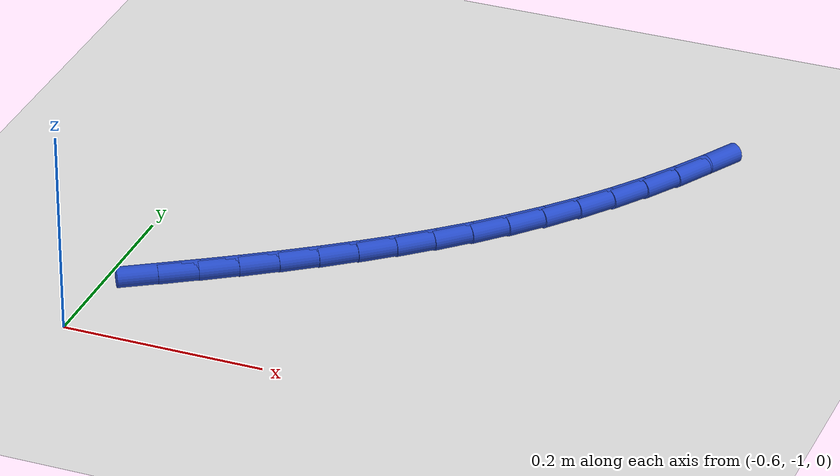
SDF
<sdf version="1.6">
 <world name="default">
  <model name="ground_plane">
   <static>1</static>
   <link name="link">
    <collision name="collision">
     <geometry><plane><normal>0 0 1</normal><size>100 100</size></plane></geometry>
     <surface><friction><ode><mu>100</mu><mu2>50</mu2></ode></friction></surface>
    </collision>
    <visual name="visual">
     <cast_shadows>0</cast_shadows>
     <geometry><plane><normal>0 0 1</normal><size>100 100</size></plane></geometry>
     <material>
      <script><uri>file://media/materials/scripts/gazebo.material</uri><name>Gazebo/WhiteGlow</name></script>
     </material>
    </visual>
   </link>
  </model>
  <model name="line">
   <link name="link_151">
    <pose>-0.5509827707120815 -0.8947250086799037 0.01 0 1.57 0.5580184928947185</pose>
    <collision name="collision">
     <geometry><cylinder><radius>0.01</radius><length>0.08</length></cylinder></geometry>
    </collision>
    <visual name="visual">
     <material>
      <script><name>Gazebo/Blue</name><uri>file://media/materials/scripts/gazebo.material</uri></script>
     </material>
     <geometry><cylinder><radius>0.01</radius><length>0.08</length></cylinder></geometry>
    </visual>
   </link>
   <link name="link_152">
    <pose>-0.5182204681369522 -0.874275022286219 0.01 0 1.57 0.5719299270831723</pose>
    <collision name="collision">
     <geometry><cylinder><radius>0.01</radius><length>0.08</length></cylinder></geometry>
    </collision>
    <visual name="visual">
     <material>
      <script><name>Gazebo/Blue</name><uri>file://media/materials/scripts/gazebo.material</uri></script>
     </material>
     <geometry><cylinder><radius>0.01</radius><length>0.08</length></cylinder></geometry>
    </visual>
   </link>
   <link name="link_153">
    <pose>-0.48587182010672536 -0.853452367473126 0.01 0 1.57 0.589069613883289</pose>
    <collision name="collision">
     <geometry><cylinder><radius>0.01</radius><length>0.08</length></cylinder></geometry>
    </collision>
    <visual name="visual">
     <material>
      <script><name>Gazebo/Blue</name><uri>file://media/materials/scripts/gazebo.material</uri></script>
     </material>
     <geometry><cylinder><radius>0.01</radius><length>0.08</length></cylinder></geometry>
    </visual>
   </link>
   <link name="link_154">
    <pose>-0.4540194923977188 -0.832168355378335 0.01 0 1.57 0.6094956309063845</pose>
    <collision name="collision">
     <geometry><cylinder><radius>0.01</radius><length>0.08</length></cylinder></geometry>
    </collision>
    <visual name="visual">
     <material>
      <script><name>Gazebo/Blue</name><uri>file://media/materials/scripts/gazebo.material</uri></script>
     </material>
     <geometry><cylinder><radius>0.01</radius><length>0.08</length></cylinder></geometry>
    </visual>
   </link>
   <link name="link_155">
    <pose>-0.42274615078625305 -0.8103342971395577 0.01 0 1.57 0.633263166594951</pose>
    <collision name="collision">
     <geometry><cylinder><radius>0.01</radius><length>0.08</length></cylinder></geometry>
    </collision>
    <visual name="visual">
     <material>
      <script><name>Gazebo/Blue</name><uri>file://media/materials/scripts/gazebo.material</uri></script>
     </material>
     <geometry><cylinder><radius>0.01</radius><length>0.08</length></cylinder></geometry>
    </visual>
   </link>
   <link name="link_156">
    <pose>-0.3921344610486457 -0.7878615038945045 0.01 0 1.57 0.6604178311100287</pose>
    <collision name="collision">
     <geometry><cylinder><radius>0.01</radius><length>0.08</length></cylinder></geometry>
    </collision>
    <visual name="visual">
     <material>
      <script><name>Gazebo/Blue</name><uri>file://media/materials/scripts/gazebo.material</uri></script>
     </material>
     <geometry><cylinder><radius>0.01</radius><length>0.08</length></cylinder></geometry>
    </visual>
   </link>
   <link name="link_157">
    <pose>-0.36226708896121573 -0.7646612867808859 0.01 0 1.57 0.6909874467323537</pose>
    <collision name="collision">
     <geometry><cylinder><radius>0.01</radius><length>0.08</length></cylinder></geometry>
    </collision>
    <visual name="visual">
     <material>
      <script><name>Gazebo/Blue</name><uri>file://media/materials/scripts/gazebo.material</uri></script>
     </material>
     <geometry><cylinder><radius>0.01</radius><length>0.08</length></cylinder></geometry>
    </visual>
   </link>
   <link name="link_158">
    <pose>-0.3332267003002819 -0.7406449569364129 0.01 0 1.57 0.7249723833430023</pose>
    <collision name="collision">
     <geometry><cylinder><radius>0.01</radius><length>0.08</length></cylinder></geometry>
    </collision>
    <visual name="visual">
     <material>
      <script><name>Gazebo/Blue</name><uri>file://media/materials/scripts/gazebo.material</uri></script>
     </material>
     <geometry><cylinder><radius>0.01</radius><length>0.08</length></cylinder></geometry>
    </visual>
   </link>
   <link name="link_159">
    <pose>-0.3050959608421623 -0.7157238254987958 0.01 0 1.57 0.7623347264660955</pose>
    <collision name="collision">
     <geometry><cylinder><radius>0.01</radius><length>0.08</length></cylinder></geometry>
    </collision>
    <visual name="visual">
     <material>
      <script><name>Gazebo/Blue</name><uri>file://media/materials/scripts/gazebo.material</uri></script>
     </material>
     <geometry><cylinder><radius>0.01</radius><length>0.08</length></cylinder></geometry>
    </visual>
   </link>
   <link name="link_160">
    <pose>-0.2779575363631768 -0.6898092036057463 0.01 0 1.57 0.8029868729434363</pose>
    <collision name="collision">
     <geometry><cylinder><radius>0.01</radius><length>0.08</length></cylinder></geometry>
    </collision>
    <visual name="visual">
     <material>
      <script><name>Gazebo/Blue</name><uri>file://media/materials/scripts/gazebo.material</uri></script>
     </material>
     <geometry><cylinder><radius>0.01</radius><length>0.08</length></cylinder></geometry>
    </visual>
   </link>
   <link name="link_161">
    <pose>-0.25189409263964374 -0.6628124023949744 0.01 0 1.57 0.8467629959727418</pose>
    <collision name="collision">
     <geometry><cylinder><radius>0.01</radius><length>0.08</length></cylinder></geometry>
    </collision>
    <visual name="visual">
     <material>
      <script><name>Gazebo/Blue</name><uri>file://media/materials/scripts/gazebo.material</uri></script>
     </material>
     <geometry><cylinder><radius>0.01</radius><length>0.08</length></cylinder></geometry>
    </visual>
   </link>
   <link name="link_162">
    <pose>-0.22698800333423869 -0.6346453973657422 0.01 0 1.57 0.8919458655196467</pose>
    <collision name="collision">
     <geometry><cylinder><radius>0.01</radius><length>0.08</length></cylinder></geometry>
    </collision>
    <visual name="visual">
     <material>
      <script><name>Gazebo/Blue</name><uri>file://media/materials/scripts/gazebo.material</uri></script>
     </material>
     <geometry><cylinder><radius>0.01</radius><length>0.08</length></cylinder></geometry>
    </visual>
   </link>
   <link name="link_163">
    <pose>-0.2032959632833897 -0.6052785660305382 0.01 0 1.57 0.935810597871323</pose>
    <collision name="collision">
     <geometry><cylinder><radius>0.01</radius><length>0.08</length></cylinder></geometry>
    </collision>
    <visual name="visual">
     <material>
      <script><name>Gazebo/Blue</name><uri>file://media/materials/scripts/gazebo.material</uri></script>
     </material>
     <geometry><cylinder><radius>0.01</radius><length>0.08</length></cylinder></geometry>
    </visual>
   </link>
   <link name="link_164">
    <pose>-0.18082929719311425 -0.5747854723532384 0.01 0 1.57 0.9781736146577262</pose>
    <collision name="collision">
     <geometry><cylinder><radius>0.01</radius><length>0.08</length></cylinder></geometry>
    </collision>
    <visual name="visual">
     <material>
      <script><name>Gazebo/Blue</name><uri>file://media/materials/scripts/gazebo.material</uri></script>
     </material>
     <geometry><cylinder><radius>0.01</radius><length>0.08</length></cylinder></geometry>
    </visual>
   </link>
   <link name="link_165">
    <pose>-0.15959469483133995 -0.5432502216563064 0.01 0 1.57 1.0191420034639518</pose>
    <collision name="collision">
     <geometry><cylinder><radius>0.01</radius><length>0.08</length></cylinder></geometry>
    </collision>
    <visual name="visual">
     <material>
      <script><name>Gazebo/Blue</name><uri>file://media/materials/scripts/gazebo.material</uri></script>
     </material>
     <geometry><cylinder><radius>0.01</radius><length>0.08</length></cylinder></geometry>
    </visual>
   </link>
   <link name="link_166">
    <pose>-0.13959884596599567 -0.5107569192622075 0.01 0 1.57 1.0588320539120302</pose>
    <collision name="collision">
     <geometry><cylinder><radius>0.01</radius><length>0.08</length></cylinder></geometry>
    </collision>
    <visual name="visual">
     <material>
      <script><name>Gazebo/Blue</name><uri>file://media/materials/scripts/gazebo.material</uri></script>
     </material>
     <geometry><cylinder><radius>0.01</radius><length>0.08</length></cylinder></geometry>
    </visual>
   </link>
  </model>
 </world>
</sdf>
